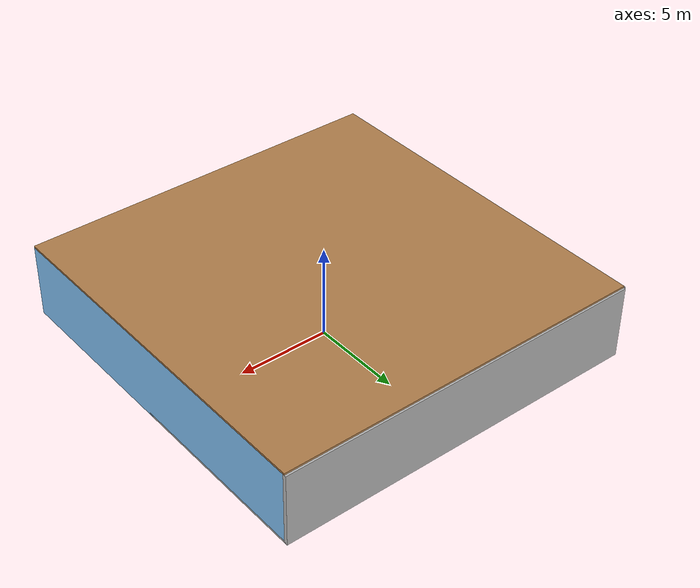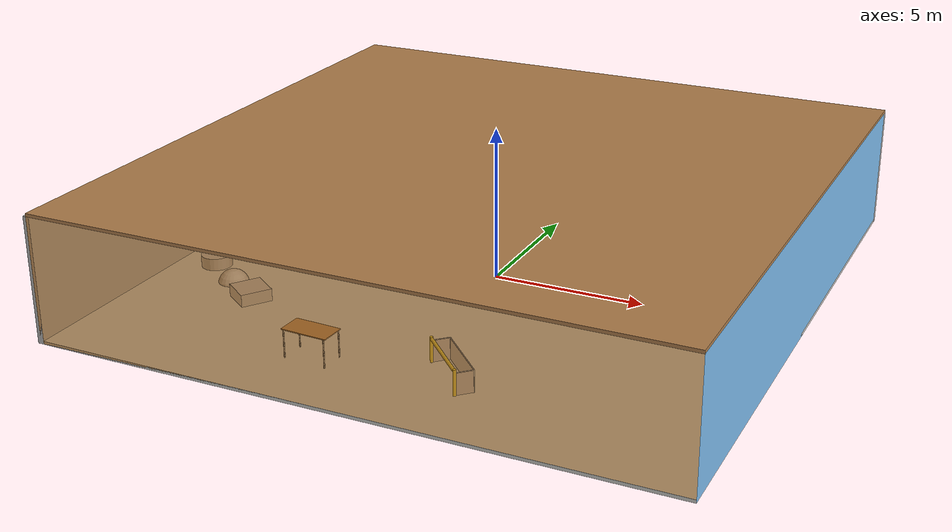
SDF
<sdf version="1.4">
 <world name="default">
  <physics type="ode">
   <max_step_size>0.001</max_step_size>
   <real_time_factor>1</real_time_factor>
   <real_time_update_rate>1000</real_time_update_rate>
   <gravity>0 0 -9.8</gravity>
  </physics>
  <scene><ambient>0.4 0.4 0.4 1</ambient><background>0.7 0.7 0.7 1</background><shadows>1</shadows></scene>
  <model name="Surrounding">
   <static>1</static>
   <link name="Ceiling">
    <collision name="Ceiling_Collision"><geometry><box><size>20 20 0.1</size></box></geometry></collision>
    <visual name="Ceiling_Visual">
     <geometry><box><size>20 20 0.1</size></box></geometry>
     <material>
      <script><uri>file://media/materials/scripts/gazebo.material</uri><name>Gazebo/WoodPallet</name></script>
     </material>
    </visual>
    <pose>0 0 4.05 0 0 0</pose>
   </link>
   <link name="Wall_South">
    <collision name="Wall_South_Collision">
     <geometry><box><size>20 0 4</size></box></geometry>
     <pose>0 0 2 0 -0 0</pose>
    </collision>
    <visual name="Wall_South_Visual">
     <pose>0 0 2 0 -0 0</pose>
     <geometry><box><size>20 0 4</size></box></geometry>
     <material>
      <script>
       <uri>file://media/materials/scripts/gazebo.material</uri>
       <name>Gazebo/OrangeTransparent</name>
      </script>
     </material>
    </visual>
    <velocity_decay><linear>0</linear><angular>0</angular></velocity_decay>
    <pose>0 -10 0 0 -0 0</pose>
   </link>
   <link name="Wall_East">
    <collision name="Wall_21_Collision">
     <geometry><box><size>20 0 4</size></box></geometry>
     <pose>0 0 2 0 -0 0</pose>
    </collision>
    <visual name="Wall_21_Visual">
     <pose>0 0 2 0 -0 0</pose>
     <geometry><box><size>20 0 4</size></box></geometry>
     <material>
      <script><uri>file://media/materials/scripts/gazebo.material</uri><name>Gazebo/SkyBlue</name></script>
     </material>
    </visual>
    <velocity_decay><linear>0</linear><angular>0</angular></velocity_decay>
    <pose>10 0 0 0 -0 1.5708</pose>
   </link>
   <link name="Wall_North">
    <collision name="Wall_22_Collision">
     <geometry><box><size>20 0.2 4</size></box></geometry>
     <pose>0 0 2 0 -0 0</pose>
    </collision>
    <visual name="Wall_22_Visual">
     <pose>0 0 2 0 -0 0</pose>
     <geometry><box><size>20 0.2 4</size></box></geometry>
     <material>
      <script><uri>file://media/materials/scripts/gazebo.material</uri><name>Gazebo/CloudySky</name></script>
     </material>
    </visual>
    <velocity_decay><linear>0</linear><angular>0</angular></velocity_decay>
    <pose>0 10 0 0 -0 0</pose>
   </link>
   <link name="Wall_West">
    <collision name="Wall_23_Collision">
     <geometry><box><size>20 0.2 4</size></box></geometry>
     <pose>0 0 2 0 -0 0</pose>
    </collision>
    <visual name="Wall_23_Visual">
     <pose>0 0 2 0 -0 0</pose>
     <geometry><box><size>20 0.2 4</size></box></geometry>
     <material>
      <script><uri>file://media/materials/scripts/gazebo.material</uri><name>Gazebo/Pioneer2Body</name></script>
     </material>
    </visual>
    <velocity_decay><linear>0</linear><angular>0</angular></velocity_decay>
    <pose>-10 0 0 0 0 -1.5708</pose>
   </link>
   <link name="Ground_link">
    <collision name="collision">
     <pose>0 0 .05 0 -0 0</pose>
     <geometry><box><size>20 20 0.1</size></box></geometry>
    </collision>
    <visual name="visual">
     <pose>0 0 .05 0 -0 0</pose>
     <geometry><box><size>20 20 0.1</size></box></geometry>
     <material>
      <script><uri>file://media/materials/scripts/gazebo.material</uri><name>Gazebo/CeilingTiled</name></script>
     </material>
    </visual>
   </link>
   <static>1</static>
  </model>
  <spherical_coordinates>
   <surface_model>EARTH_WGS84</surface_model>
   <latitude_deg>0</latitude_deg>
   <longitude_deg>0</longitude_deg>
   <elevation>0</elevation>
   <heading_deg>0</heading_deg>
  </spherical_coordinates>
  <light name="lightball_0" type="diffuse">
   <diffuse>0.8 0.8 0.8 1</diffuse>
   <specular>0.2 0.2 0.2 1</specular>
   <attenuation>
    <range>100</range>
    <constant>0.7</constant>
    <linear>0.01</linear>
    <quadratic>0.001</quadratic>
   </attenuation>
   <direction>-0.5 0.1 -0.9</direction>
   <pose>8.66948284853 -0.28747189998 2.22764761234 0 0 0</pose>
  </light>
  <light name="lightball_1" type="diffuse">
   <diffuse>0.8 0.8 0.8 1</diffuse>
   <specular>0.2 0.2 0.2 1</specular>
   <attenuation>
    <range>100</range>
    <constant>0.7</constant>
    <linear>0.01</linear>
    <quadratic>0.001</quadratic>
   </attenuation>
   <direction>-0.5 0.1 -0.9</direction>
   <pose>7.8297249553 5.43122169385 3.37452300657 0 0 0</pose>
  </light>
  <light name="lightball_2" type="diffuse">
   <diffuse>0.8 0.8 0.8 1</diffuse>
   <specular>0.2 0.2 0.2 1</specular>
   <attenuation>
    <range>100</range>
    <constant>0.7</constant>
    <linear>0.01</linear>
    <quadratic>0.001</quadratic>
   </attenuation>
   <direction>-0.5 0.1 -0.9</direction>
   <pose>-6.81486333082 -2.22889514385 3.86757201366 0 0 0</pose>
  </light>
  <light name="lightball_3" type="diffuse">
   <diffuse>0.8 0.8 0.8 1</diffuse>
   <specular>0.2 0.2 0.2 1</specular>
   <attenuation>
    <range>100</range>
    <constant>0.7</constant>
    <linear>0.01</linear>
    <quadratic>0.001</quadratic>
   </attenuation>
   <direction>-0.5 0.1 -0.9</direction>
   <pose>3.80933422368 0.573037848285 1.06969437477 0 0 0</pose>
  </light>
  <light name="lightball_4" type="diffuse">
   <diffuse>0.8 0.8 0.8 1</diffuse>
   <specular>0.2 0.2 0.2 1</specular>
   <attenuation>
    <range>100</range>
    <constant>0.7</constant>
    <linear>0.01</linear>
    <quadratic>0.001</quadratic>
   </attenuation>
   <direction>-0.5 0.1 -0.9</direction>
   <pose>-8.51562299409 5.53231603785 1.84405324704 0 0 0</pose>
  </light>
  <light name="lightball_5" type="diffuse">
   <diffuse>0.8 0.8 0.8 1</diffuse>
   <specular>0.2 0.2 0.2 1</specular>
   <attenuation>
    <range>100</range>
    <constant>0.7</constant>
    <linear>0.01</linear>
    <quadratic>0.001</quadratic>
   </attenuation>
   <direction>-0.5 0.1 -0.9</direction>
   <pose>8.21091753086 2.47724365724 3.63012858355 0 0 0</pose>
  </light>
  <light name="lightball_6" type="diffuse">
   <diffuse>0.8 0.8 0.8 1</diffuse>
   <specular>0.2 0.2 0.2 1</specular>
   <attenuation>
    <range>100</range>
    <constant>0.7</constant>
    <linear>0.01</linear>
    <quadratic>0.001</quadratic>
   </attenuation>
   <direction>-0.5 0.1 -0.9</direction>
   <pose>9.78515715104 7.38468886381 3.77350804792 0 0 0</pose>
  </light>
  <light name="lightball_7" type="diffuse">
   <diffuse>0.8 0.8 0.8 1</diffuse>
   <specular>0.2 0.2 0.2 1</specular>
   <attenuation>
    <range>100</range>
    <constant>0.7</constant>
    <linear>0.01</linear>
    <quadratic>0.001</quadratic>
   </attenuation>
   <direction>-0.5 0.1 -0.9</direction>
   <pose>8.21705029928 0.875747394256 2.43437897188 0 0 0</pose>
  </light>
  <light name="lightball_8" type="diffuse">
   <diffuse>0.8 0.8 0.8 1</diffuse>
   <specular>0.2 0.2 0.2 1</specular>
   <attenuation>
    <range>100</range>
    <constant>0.7</constant>
    <linear>0.01</linear>
    <quadratic>0.001</quadratic>
   </attenuation>
   <direction>-0.5 0.1 -0.9</direction>
   <pose>-1.39622970672 -0.732198142882 1.11331886533 0 0 0</pose>
  </light>
  <light name="lightball_9" type="diffuse">
   <diffuse>0.8 0.8 0.8 1</diffuse>
   <specular>0.2 0.2 0.2 1</specular>
   <attenuation>
    <range>100</range>
    <constant>0.7</constant>
    <linear>0.01</linear>
    <quadratic>0.001</quadratic>
   </attenuation>
   <direction>-0.5 0.1 -0.9</direction>
   <pose>-6.76185671865 2.50358850393 1.88112258939 0 0 0</pose>
  </light>
  <light name="lightball_10" type="diffuse">
   <diffuse>0.8 0.8 0.8 1</diffuse>
   <specular>0.2 0.2 0.2 1</specular>
   <attenuation>
    <range>100</range>
    <constant>0.7</constant>
    <linear>0.01</linear>
    <quadratic>0.001</quadratic>
   </attenuation>
   <direction>-0.5 0.1 -0.9</direction>
   <pose>1.62899895736 5.92092625074 1.5788294121 0 0 0</pose>
  </light>
  <light name="lightball_11" type="diffuse">
   <diffuse>0.8 0.8 0.8 1</diffuse>
   <specular>0.2 0.2 0.2 1</specular>
   <attenuation>
    <range>100</range>
    <constant>0.7</constant>
    <linear>0.01</linear>
    <quadratic>0.001</quadratic>
   </attenuation>
   <direction>-0.5 0.1 -0.9</direction>
   <pose>2.63193028004 0.56669985833 0.611370728441 0 0 0</pose>
  </light>
  <light name="lightball_12" type="diffuse">
   <diffuse>0.8 0.8 0.8 1</diffuse>
   <specular>0.2 0.2 0.2 1</specular>
   <attenuation>
    <range>100</range>
    <constant>0.7</constant>
    <linear>0.01</linear>
    <quadratic>0.001</quadratic>
   </attenuation>
   <direction>-0.5 0.1 -0.9</direction>
   <pose>-4.35173639228 2.50201765103 3.87204084937 0 0 0</pose>
  </light>
  <light name="lightball_13" type="diffuse">
   <diffuse>0.8 0.8 0.8 1</diffuse>
   <specular>0.2 0.2 0.2 1</specular>
   <attenuation>
    <range>100</range>
    <constant>0.7</constant>
    <linear>0.01</linear>
    <quadratic>0.001</quadratic>
   </attenuation>
   <direction>-0.5 0.1 -0.9</direction>
   <pose>-9.2028238293 1.86647807312 0.788075520029 0 0 0</pose>
  </light>
  <include>
   <uri>model://textured_shapes</uri>
   <pose>-7.33336128974 -4.04671328013 0 0 0 0.963516860997</pose>
  </include>
  <include><uri>model://table</uri><pose>-2.25977280296 -7.54539044846 0 0 0 3.09084548665</pose></include>
  <include>
   <uri>model://robocup_3Dsim_goal</uri>
   <pose>1.70000122725 -7.0920009225 0 0 0 0.779419091169</pose>
  </include>
  <include><uri>model://table</uri><pose>4.97430329755 2.24562163717 0 0 0 2.89501678998</pose></include>
  <include>
   <uri>model://construction_cone</uri>
   <pose>5.00591910506 7.19189219269 0 0 0 0.102704811497</pose>
  </include>
 </world>
</sdf>

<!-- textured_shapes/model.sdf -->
<sdf version="1.6">
  <model name="textured_shapes">
    <pose>0 0 0.5 0 0 0</pose>
    <link name="box">
      <pose>0 -1.5 0 0 0 0</pose>
      <collision name="collision">
        <geometry>
          <box>
            <size>1 1 1</size>
          </box>
        </geometry>
      </collision>
      <visual name="visual">
        <geometry>
          <box>
            <size>1 1 1</size>
          </box>
        </geometry>
        <material>
          <script>
            <uri>model://../model_source/models/textured_shapes/materials/scripts</uri>
            <uri>model://../model_source/models/textured_shapes/materials/textures</uri>
            <name>TexturedShape/Squares</name>
          </script>
        </material>
      </visual>
    </link>
    <link name="sphere">
      <collision name="collision">
        <geometry>
          <sphere>
            <radius>0.5</radius>
          </sphere>
        </geometry>
      </collision>
      <visual name="visual">
        <geometry>
          <sphere>
            <radius>0.5</radius>
          </sphere>
        </geometry>
        <material>
          <script>
            <uri>model://../model_source/models/textured_shapes/materials/scripts</uri>
            <uri>model://../model_source/models/textured_shapes/materials/textures</uri>
            <name>TexturedShape/Squares</name>
          </script>
        </material>
      </visual>
    </link>
    <link name="cylinder">
      <pose>0 1.5 0 0 0 0</pose>
      <collision name="collision">
        <geometry>
          <cylinder>
            <radius>0.5</radius>
            <length>1</length>
          </cylinder>
        </geometry>
      </collision>
      <visual name="visual">
        <geometry>
          <cylinder>
            <radius>0.5</radius>
            <length>1</length>
          </cylinder>
        </geometry>
        <material>
          <script>
            <uri>model://../model_source/models/textured_shapes/materials/scripts</uri>
            <uri>model://../model_source/models/textured_shapes/materials/textures</uri>
            <name>TexturedShape/Squares</name>
          </script>
        </material>
      </visual>
    </link>
  </model>
</sdf>

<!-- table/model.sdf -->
<sdf version="1.5">
  <model name="table">
    <static>true</static>
    <link name="link">
      <collision name="surface">
        <pose>0 0 1.0 0 0 0</pose>
        <geometry>
          <box>
            <size>1.5 0.8 0.03</size>
          </box>
        </geometry>
        <surface>
          <friction>
            <ode>
              <mu>0.6</mu>
              <mu2>0.6</mu2>
            </ode>
          </friction>
        </surface>
      </collision>
      <visual name="visual1">
        <pose>0 0 1.0 0 0 0</pose>
        <geometry>
          <box>
            <size>1.5 0.8 0.03</size>
          </box>
        </geometry>
        <material>
          <script>
            <uri>model://media/materials/scripts/gazebo.material</uri>
            <name>Gazebo/Wood</name>
          </script>
        </material>
      </visual>
      <collision name="front_left_leg">
        <pose>0.68 0.38 0.5 0 0 0</pose>
        <geometry>
          <cylinder>
            <radius>0.02</radius>
            <length>1.0</length>
          </cylinder>
        </geometry>
      </collision>
      <visual name="front_left_leg">
        <pose>0.68 0.38 0.5 0 0 0</pose>
        <geometry>
          <cylinder>
            <radius>0.02</radius>
            <length>1.0</length>
          </cylinder>
        </geometry>
        <material>
          <script>
            <uri>model://media/materials/scripts/gazebo.material</uri>
            <name>Gazebo/Grey</name>
          </script>
        </material>
      </visual>
      <collision name="front_right_leg">
        <pose>0.68 -0.38 0.5 0 0 0</pose>
        <geometry>
          <cylinder>
            <radius>0.02</radius>
            <length>1.0</length>
          </cylinder>
        </geometry>
      </collision>
      <visual name="front_right_leg">
        <pose>0.68 -0.38 0.5 0 0 0</pose>
        <geometry>
          <cylinder>
            <radius>0.02</radius>
            <length>1.0</length>
          </cylinder>
        </geometry>
        <material>
          <script>
            <uri>model://media/materials/scripts/gazebo.material</uri>
            <name>Gazebo/Grey</name>
          </script>
        </material>
      </visual>
      <collision name="back_right_leg">
        <pose>-0.68 -0.38 0.5 0 0 0</pose>
        <geometry>
          <cylinder>
            <radius>0.02</radius>
            <length>1.0</length>
          </cylinder>
        </geometry>
      </collision>
      <visual name="back_right_leg">
        <pose>-0.68 -0.38 0.5 0 0 0</pose>
        <geometry>
          <cylinder>
            <radius>0.02</radius>
            <length>1.0</length>
          </cylinder>
        </geometry>
        <material>
          <script>
            <uri>model://media/materials/scripts/gazebo.material</uri>
            <name>Gazebo/Grey</name>
          </script>
        </material>
      </visual>
      <collision name="back_left_leg">
        <pose>-0.68 0.38 0.5 0 0 0</pose>
        <geometry>
          <cylinder>
            <radius>0.02</radius>
            <length>1.0</length>
          </cylinder>
        </geometry>
      </collision>
      <visual name="back_left_leg">
        <pose>-0.68 0.38 0.5 0 0 0</pose>
        <geometry>
          <cylinder>
            <radius>0.02</radius>
            <length>1.0</length>
          </cylinder>
        </geometry>
        <material>
          <script>
            <uri>model://media/materials/scripts/gazebo.material</uri>
            <name>Gazebo/Grey</name>
          </script>
        </material>
      </visual>
    </link>
  </model>
</sdf>

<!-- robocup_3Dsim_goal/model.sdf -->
<sdf version="1.5">
  <model name="robocup_3d_goal">
    <static>true</static>
    <link name="left_post">
      <pose>0 1.05 0.45 0 0 0</pose>
      <collision name="collision">
        <geometry>
          <cylinder>
            <radius>0.05</radius>
            <length>0.9</length>
          </cylinder>
        </geometry>
      </collision>
      <visual name="visual">
        <geometry>
          <cylinder>
            <radius>0.05</radius>
            <length>0.9</length>
          </cylinder>
        </geometry>
        <material>
          <script>
            <uri>file://media/materials/scripts/gazebo.material</uri>
            <name>Gazebo/ZincYellow</name>
          </script>
        </material>
      </visual>
    </link>
    <link name="left_support_horiz_lower">
      <pose>0.30 1.05 0.01 0 0 0</pose>
      <collision name="collision">
        <geometry>
          <box>
            <size>0.50 0.02 0.02</size>
          </box>
        </geometry>
      </collision>
      <visual name="visual">
        <geometry>
          <box>
            <size>0.50 0.02 0.02</size>
          </box>
        </geometry>
        <material>
          <script>
            <uri>file://media/materials/scripts/gazebo.material</uri>
            <name>Gazebo/White</name>
          </script>
        </material>
      </visual>
    </link>
    <link name="left_support_horiz_upper">
      <pose>0.30 1.05 0.79 0 0 0</pose>
      <collision name="collision">
        <geometry>
          <box>
            <size>0.50 0.02 0.02</size>
          </box>
        </geometry>
      </collision>
      <visual name="visual">
        <geometry>
          <box>
            <size>0.50 0.02 0.02</size>
          </box>
        </geometry>
        <material>
          <script>
            <uri>file://media/materials/scripts/gazebo.material</uri>
            <name>Gazebo/White</name>
          </script>
        </material>
      </visual>
    </link>
    <link name="left_support_vertical">
      <pose>0.56 1.05 0.4 0 1.5708 0</pose>
      <collision name="collision">
        <geometry>
          <box>
            <size>0.80 0.02 0.02</size>
          </box>
        </geometry>
      </collision>
      <visual name="visual">
        <geometry>
          <box>
            <size>0.80 0.02 0.02</size>
          </box>
        </geometry>
        <material>
          <script>
            <uri>file://media/materials/scripts/gazebo.material</uri>
            <name>Gazebo/White</name>
          </script>
        </material>
      </visual>
    </link>
    <link name="right_support_horiz_lower">
      <pose>0.30 -1.05 0.01 0 0 0</pose>
      <collision name="collision">
        <geometry>
          <box>
            <size>0.50 0.02 0.02</size>
          </box>
        </geometry>
      </collision>
      <visual name="visual">
        <geometry>
          <box>
            <size>0.50 0.02 0.02</size>
          </box>
        </geometry>
        <material>
          <script>
            <uri>file://media/materials/scripts/gazebo.material</uri>
            <name>Gazebo/White</name>
          </script>
        </material>
      </visual>
    </link>
    <link name="right_support_horiz_upper">
      <pose>0.30 -1.05 0.79 0 0 0</pose>
      <collision name="collision">
        <geometry>
          <box>
            <size>0.50 0.02 0.02</size>
          </box>
        </geometry>
      </collision>
      <visual name="visual">
        <geometry>
          <box>
            <size>0.50 0.02 0.02</size>
          </box>
        </geometry>
        <material>
          <script>
            <uri>file://media/materials/scripts/gazebo.material</uri>
            <name>Gazebo/White</name>
          </script>
        </material>
      </visual>
    </link>
    <link name="right_support_vertical">
      <pose>0.56 -1.05 0.4 0 1.5708 0</pose>
      <collision name="collision">
        <geometry>
          <box>
            <size>0.80 0.02 0.02</size>
          </box>
        </geometry>
      </collision>
      <visual name="visual">
        <geometry>
          <box>
            <size>0.80 0.02 0.02</size>
          </box>
        </geometry>
        <material>
          <script>
            <uri>file://media/materials/scripts/gazebo.material</uri>
            <name>Gazebo/White</name>
          </script>
        </material>
      </visual>
    </link>
    <link name="center_support_horiz_lower">
      <pose>0.56 0 0.01 0 1.5708 0</pose>
      <collision name="collision">
        <geometry>
          <box>
            <size>0.02 2.08 0.02</size>
          </box>
        </geometry>
      </collision>
      <visual name="visual">
        <geometry>
          <box>
            <size>0.02 2.08 0.02</size>
          </box>
        </geometry>
        <material>
          <script>
            <uri>file://media/materials/scripts/gazebo.material</uri>
            <name>Gazebo/White</name>
          </script>
        </material>
      </visual>
    </link>
    <link name="center_support_horiz_upper">
      <pose>0.56 0 0.79 0 1.5708 0</pose>
      <collision name="collision">
        <geometry>
          <box>
            <size>0.02 2.08 0.02</size>
          </box>
        </geometry>
      </collision>
      <visual name="visual">
        <geometry>
          <box>
            <size>0.02 2.08 0.02</size>
          </box>
        </geometry>
        <material>
          <script>
            <uri>file://media/materials/scripts/gazebo.material</uri>
            <name>Gazebo/White</name>
          </script>
        </material>
      </visual>
    </link>
    <link name="right_post">
      <pose>0 -1.05 0.45 0 0 0</pose>
      <collision name="collision">
        <geometry>
          <cylinder>
            <radius>0.05</radius>
            <length>0.9</length>
          </cylinder>
        </geometry>
      </collision>
      <visual name="visual">
        <geometry>
          <cylinder>
            <radius>0.05</radius>
            <length>0.9</length>
          </cylinder>
        </geometry>
        <material>
          <script>
            <uri>file://media/materials/scripts/gazebo.material</uri>
            <name>Gazebo/ZincYellow</name>
          </script>
        </material>
      </visual>
    </link>
    <link name="crossbar">
      <pose>0 0 0.85 1.57 1.57 0</pose>
      <collision name="collision">
        <geometry>
          <cylinder>
            <radius>0.05</radius>
            <length>2.0</length>
          </cylinder>
        </geometry>
      </collision>
      <visual name="visual">
        <geometry>
          <cylinder>
            <radius>0.05</radius>
            <length>2.0</length>
          </cylinder>
        </geometry>
        <material>
          <script>
            <uri>file://media/materials/scripts/gazebo.material</uri>
            <name>Gazebo/ZincYellow</name>
          </script>
        </material>
      </visual>
    </link>
    <link name="center_net">
      <pose>0.56 0 0.40 0 0 0</pose>
      <collision name="collision">
        <geometry>
          <box>
            <size>0.01 2.1 0.80</size>
          </box>
        </geometry>
      </collision>
      <visual name="visual">
        <geometry>
          <box>
            <size>0.01 2.1 0.80</size>
          </box>
        </geometry>
        <material>
          <script>
            <uri>model://../model_source/models/robocup09_spl_field/materials/scripts/</uri>
            <uri>model://../model_source/models/robocup09_spl_field/materials/textures/</uri>
            <name>RoboCup/Net</name>
          </script>
        </material>
      </visual>
    </link>
    <link name="left_net">
      <pose>0.30 1.05 0.40 0 0 0</pose>
      <collision name="collision">
        <geometry>
          <box>
            <size>0.50 0.01 0.76</size>
          </box>
        </geometry>
      </collision>
      <visual name="visual">
        <geometry>
          <box>
            <size>0.50 0.01 0.76</size>
          </box>
        </geometry>
        <material>
          <script>
            <uri>model://../model_source/models/robocup09_spl_field/materials/scripts/</uri>
            <uri>model://../model_source/models/robocup09_spl_field/materials/textures/</uri>
            <name>RoboCup/Net</name>
          </script>
        </material>
      </visual>
    </link>
    <link name="right_net">
      <pose>0.30 -1.05 0.40 0 0 0</pose>
      <collision name="collision">
        <geometry>
          <box>
            <size>0.50 0.01 0.76</size>
          </box>
        </geometry>
      </collision>
      <visual name="visual">
        <geometry>
          <box>
            <size>0.50 0.01 0.76</size>
          </box>
        </geometry>
        <material>
          <script>
            <uri>model://../model_source/models/robocup09_spl_field/materials/scripts/</uri>
            <uri>model://../model_source/models/robocup09_spl_field/materials/textures/</uri>
            <name>RoboCup/Net</name>
          </script>
        </material>
      </visual>
    </link>
  </model>
</sdf>

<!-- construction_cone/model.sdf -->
<sdf version="1.5">
  <model name="Construction Cone">
    <link name="link">
      <collision name="collision">
        <geometry>
          <mesh>
            <scale>10 10 10</scale>
            <uri>file://isr-testbed/construction_cone/meshes/construction_cone.dae</uri>
          </mesh>
        </geometry>
      </collision>
      <visual name="visual">
        <geometry>
          <mesh>
            <scale>10 10 10</scale>
            <uri>file://isr-testbed/construction_cone/meshes/construction_cone.dae</uri>
          </mesh>
        </geometry>
      </visual>
    </link>
  </model>
</sdf>
